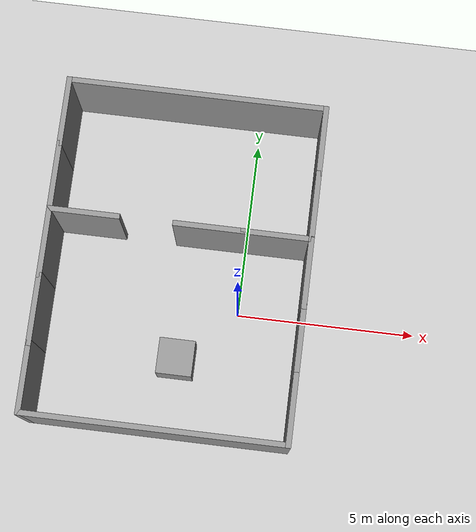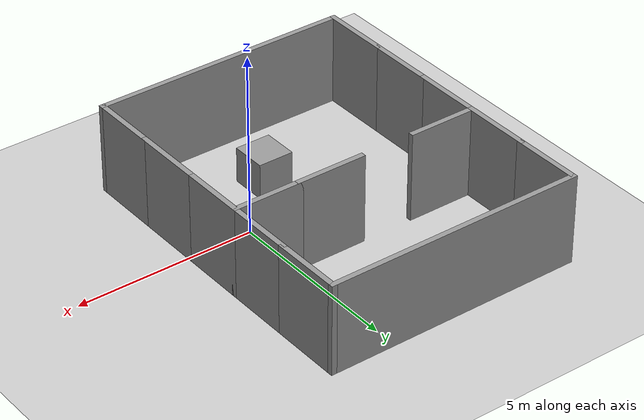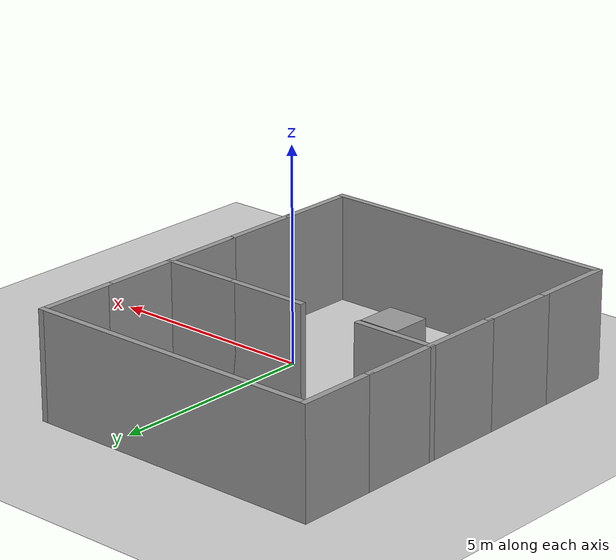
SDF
<sdf version="1.6">
 <world name="default">
  <light name="sun" type="directional">
   <pose>0 0 10 0 -0 0</pose>
   <diffuse>0.8 0.8 0.8 1</diffuse>
   <specular>0.2 0.2 0.2 1</specular>
   <attenuation>
    <range>1000</range>
    <constant>0.9</constant>
    <linear>0.01</linear>
    <quadratic>0.001</quadratic>
   </attenuation>
   <direction>-0.5 0.1 -0.9</direction>
  </light>
  <model name="ground_plane">
   <static>1</static>
   <link name="link">
    <collision name="collision">
     <geometry><plane><normal>0 0 1</normal><size>100 100</size></plane></geometry>
     <surface>
      <contact><collide_bitmask>65535</collide_bitmask></contact>
      <friction><ode><mu>100</mu><mu2>50</mu2></ode></friction>
     </surface>
    </collision>
    <visual name="visual">
     <cast_shadows>0</cast_shadows>
     <geometry><plane><normal>0 0 1</normal><size>100 100</size></plane></geometry>
     <material>
      <script><uri>file://media/materials/scripts/gazebo.material</uri><name>Gazebo/Grey</name></script>
     </material>
    </visual>
   </link>
  </model>
  <gravity>0 0 -9.8</gravity>
  <magnetic_field>6e-06 2.3e-05 -4.2e-05</magnetic_field>
  <atmosphere type="adiabatic"/>
  <physics name="default_physics" default="0" type="ode">
   <max_step_size>0.001</max_step_size>
   <real_time_factor>1</real_time_factor>
   <real_time_update_rate>1000</real_time_update_rate>
  </physics>
  <scene><ambient>0.4 0.4 0.4 1</ambient><background>0.7 0.7 0.7 1</background><shadows>1</shadows></scene>
  <audio><device>default</device></audio>
  <spherical_coordinates>
   <surface_model>EARTH_WGS84</surface_model>
   <latitude_deg>0</latitude_deg>
   <longitude_deg>0</longitude_deg>
   <elevation>0</elevation>
   <heading_deg>0</heading_deg>
  </spherical_coordinates>
  <model name="LVL_One">
   <pose>-1.80169 0.976407 0 0 -0 0</pose>
   <link name="Wall_13">
    <collision name="Wall_13_Collision">
     <geometry><box><size>2 0.15 2.5</size></box></geometry>
     <pose>0 0 1.25 0 -0 0</pose>
    </collision>
    <visual name="Wall_13_Visual">
     <pose>0 0 1.25 0 -0 0</pose>
     <geometry><box><size>2 0.15 2.5</size></box></geometry>
     <material>
      <script><uri>file://media/materials/scripts/gazebo.material</uri><name>Gazebo/Grey</name></script>
      <ambient>1 1 1 1</ambient>
     </material>
     <meta><layer>0</layer></meta>
    </visual>
    <pose>-2.64622 0.925 0 0 -0 3.14159</pose>
   </link>
   <link name="Wall_20">
    <collision name="Wall_20_Collision">
     <geometry><box><size>2 0.15 2.5</size></box></geometry>
     <pose>0 0 1.25 0 -0 0</pose>
    </collision>
    <visual name="Wall_20_Visual">
     <pose>0 0 1.25 0 -0 0</pose>
     <geometry><box><size>2 0.15 2.5</size></box></geometry>
     <material>
      <script><uri>file://media/materials/scripts/gazebo.material</uri><name>Gazebo/Grey</name></script>
      <ambient>1 1 1 1</ambient>
     </material>
     <meta><layer>0</layer></meta>
    </visual>
    <pose>2.64622 0.925 0 0 -0 0</pose>
   </link>
   <link name="Wall_21">
    <collision name="Wall_21_Collision">
     <geometry><box><size>2 0.15 2.5</size></box></geometry>
     <pose>0 0 1.25 0 -0 0</pose>
    </collision>
    <visual name="Wall_21_Visual">
     <pose>0 0 1.25 0 -0 0</pose>
     <geometry><box><size>2 0.15 2.5</size></box></geometry>
     <material>
      <script><uri>file://media/materials/scripts/gazebo.material</uri><name>Gazebo/Grey</name></script>
      <ambient>1 1 1 1</ambient>
     </material>
     <meta><layer>0</layer></meta>
    </visual>
    <pose>3.57122 0 0 0 -0 -1.5708</pose>
   </link>
   <link name="Wall_26">
    <collision name="Wall_26_Collision">
     <geometry><box><size>2 0.15 2.5</size></box></geometry>
     <pose>0 0 1.25 0 -0 0</pose>
    </collision>
    <visual name="Wall_26_Visual">
     <pose>0 0 1.25 0 -0 0</pose>
     <geometry><box><size>2 0.15 2.5</size></box></geometry>
     <material>
      <script><uri>file://media/materials/scripts/gazebo.material</uri><name>Gazebo/Grey</name></script>
      <ambient>1 1 1 1</ambient>
     </material>
     <meta><layer>0</layer></meta>
    </visual>
    <pose>-3.57122 0 0 0 -0 -1.5708</pose>
   </link>
   <link name="Wall_29">
    <collision name="Wall_29_Collision">
     <geometry><box><size>2 0.15 2.5</size></box></geometry>
     <pose>0 0 1.25 0 -0 0</pose>
    </collision>
    <visual name="Wall_29_Visual">
     <pose>0 0 1.25 0 -0 0</pose>
     <geometry><box><size>2 0.15 2.5</size></box></geometry>
     <material>
      <script><uri>file://media/materials/scripts/gazebo.material</uri><name>Gazebo/Grey</name></script>
      <ambient>1 1 1 1</ambient>
     </material>
     <meta><layer>0</layer></meta>
    </visual>
    <pose>-3.57122 1.85 0 0 -0 1.5708</pose>
   </link>
   <link name="Wall_31">
    <collision name="Wall_31_Collision">
     <geometry><box><size>2 0.15 2.5</size></box></geometry>
     <pose>0 0 1.25 0 -0 0</pose>
    </collision>
    <visual name="Wall_31_Visual">
     <pose>0 0 1.25 0 -0 0</pose>
     <geometry><box><size>2 0.15 2.5</size></box></geometry>
     <material>
      <script><uri>file://media/materials/scripts/gazebo.material</uri><name>Gazebo/Grey</name></script>
      <ambient>1 1 1 1</ambient>
     </material>
     <meta><layer>0</layer></meta>
    </visual>
    <pose>3.57122 1.85 0 0 -0 1.5708</pose>
   </link>
   <link name="Wall_34">
    <collision name="Wall_34_Collision">
     <geometry><box><size>2 0.15 2.5</size></box></geometry>
     <pose>0 0 1.25 0 -0 0</pose>
    </collision>
    <visual name="Wall_34_Visual">
     <pose>0 0 1.25 0 -0 0</pose>
     <geometry><box><size>2 0.15 2.5</size></box></geometry>
     <material>
      <script><uri>file://media/materials/scripts/gazebo.material</uri><name>Gazebo/Grey</name></script>
      <ambient>1 1 1 1</ambient>
     </material>
     <meta><layer>0</layer></meta>
    </visual>
    <pose>-3.57122 -1.85 0 0 -0 -1.5708</pose>
   </link>
   <link name="Wall_36">
    <collision name="Wall_36_Collision">
     <geometry><box><size>2 0.15 2.5</size></box></geometry>
     <pose>0 0 1.25 0 -0 0</pose>
    </collision>
    <visual name="Wall_36_Visual">
     <pose>0 0 1.25 0 -0 0</pose>
     <geometry><box><size>2 0.15 2.5</size></box></geometry>
     <material>
      <script><uri>file://media/materials/scripts/gazebo.material</uri><name>Gazebo/Grey</name></script>
      <ambient>1 1 1 1</ambient>
     </material>
     <meta><layer>0</layer></meta>
    </visual>
    <pose>3.57122 -1.85 0 0 -0 -1.5708</pose>
   </link>
   <link name="Wall_39">
    <collision name="Wall_39_Collision">
     <geometry><box><size>2 0.15 2.5</size></box></geometry>
     <pose>0 0 1.25 0 -0 0</pose>
    </collision>
    <visual name="Wall_39_Visual">
     <pose>0 0 1.25 0 -0 0</pose>
     <geometry><box><size>2 0.15 2.5</size></box></geometry>
     <material>
      <script><uri>file://media/materials/scripts/gazebo.material</uri><name>Gazebo/Grey</name></script>
      <ambient>1 1 1 1</ambient>
     </material>
     <meta><layer>0</layer></meta>
    </visual>
    <pose>-3.57122 3.7 0 0 -0 1.5708</pose>
   </link>
   <link name="Wall_41">
    <collision name="Wall_41_Collision">
     <geometry><box><size>2 0.15 2.5</size></box></geometry>
     <pose>0 0 1.25 0 -0 0</pose>
    </collision>
    <visual name="Wall_41_Visual">
     <pose>0 0 1.25 0 -0 0</pose>
     <geometry><box><size>2 0.15 2.5</size></box></geometry>
     <material>
      <script><uri>file://media/materials/scripts/gazebo.material</uri><name>Gazebo/Grey</name></script>
      <ambient>1 1 1 1</ambient>
     </material>
     <meta><layer>0</layer></meta>
    </visual>
    <pose>3.57122 3.7 0 0 -0 1.5708</pose>
   </link>
   <link name="Wall_42">
    <collision name="Wall_42_Collision">
     <geometry><box><size>7.29244 0.15 2.5</size></box></geometry>
     <pose>0 0 1.25 0 -0 0</pose>
    </collision>
    <visual name="Wall_42_Visual">
     <pose>0 0 1.25 0 -0 0</pose>
     <geometry><box><size>7.29244 0.15 2.5</size></box></geometry>
     <material>
      <script><uri>file://media/materials/scripts/gazebo.material</uri><name>Gazebo/Grey</name></script>
      <ambient>1 1 1 1</ambient>
     </material>
     <meta><layer>0</layer></meta>
    </visual>
    <pose>0 4.625 0 0 -0 3.14159</pose>
   </link>
   <link name="Wall_44">
    <collision name="Wall_44_Collision">
     <geometry><box><size>2 0.15 2.5</size></box></geometry>
     <pose>0 0 1.25 0 -0 0</pose>
    </collision>
    <visual name="Wall_44_Visual">
     <pose>0 0 1.25 0 -0 0</pose>
     <geometry><box><size>2 0.15 2.5</size></box></geometry>
     <material>
      <script><uri>file://media/materials/scripts/gazebo.material</uri><name>Gazebo/Grey</name></script>
      <ambient>1 1 1 1</ambient>
     </material>
     <meta><layer>0</layer></meta>
    </visual>
    <pose>-3.57122 -3.7 0 0 -0 -1.5708</pose>
   </link>
   <link name="Wall_46">
    <collision name="Wall_46_Collision">
     <geometry><box><size>2 0.15 2.5</size></box></geometry>
     <pose>0 0 1.25 0 -0 0</pose>
    </collision>
    <visual name="Wall_46_Visual">
     <pose>0 0 1.25 0 -0 0</pose>
     <geometry><box><size>2 0.15 2.5</size></box></geometry>
     <material>
      <script><uri>file://media/materials/scripts/gazebo.material</uri><name>Gazebo/Grey</name></script>
      <ambient>1 1 1 1</ambient>
     </material>
     <meta><layer>0</layer></meta>
    </visual>
    <pose>3.57122 -3.7 0 0 -0 -1.5708</pose>
   </link>
   <link name="Wall_47">
    <collision name="Wall_47_Collision">
     <geometry><box><size>7.29244 0.15 2.5</size></box></geometry>
     <pose>0 0 1.25 0 -0 0</pose>
    </collision>
    <visual name="Wall_47_Visual">
     <pose>0 0 1.25 0 -0 0</pose>
     <geometry><box><size>7.29244 0.15 2.5</size></box></geometry>
     <material>
      <script><uri>file://media/materials/scripts/gazebo.material</uri><name>Gazebo/Grey</name></script>
      <ambient>1 1 1 1</ambient>
     </material>
     <meta><layer>0</layer></meta>
    </visual>
    <pose>0 -4.625 0 0 -0 3.14159</pose>
   </link>
   <link name="Wall_7">
    <collision name="Wall_7_Collision">
     <geometry><box><size>2 0.15 2.5</size></box></geometry>
     <pose>0 0 1.25 0 -0 0</pose>
    </collision>
    <visual name="Wall_7_Visual">
     <pose>0 0 1.25 0 -0 0</pose>
     <geometry><box><size>2 0.15 2.5</size></box></geometry>
     <material>
      <script><uri>file://media/materials/scripts/gazebo.material</uri><name>Gazebo/Grey</name></script>
      <ambient>1 1 1 1</ambient>
     </material>
     <meta><layer>0</layer></meta>
    </visual>
    <pose>0.796219 0.925 0 0 -0 3.14159</pose>
   </link>
   <static>1</static>
  </model>
  <model name="unit_box">
   <pose>-1.5526 -1.51685 0.499995 -1e-05 -0 0</pose>
   <link name="link">
    <inertial>
     <mass>1</mass>
     <inertia>
      <ixx>0.166667</ixx>
      <ixy>0</ixy>
      <ixz>0</ixz>
      <iyy>0.166667</iyy>
      <iyz>0</iyz>
      <izz>0.166667</izz>
     </inertia>
    </inertial>
    <collision name="collision"><geometry><box><size>1 1 1</size></box></geometry></collision>
    <visual name="visual">
     <geometry><box><size>1 1 1</size></box></geometry>
     <material>
      <script><name>Gazebo/Grey</name><uri>file://media/materials/scripts/gazebo.material</uri></script>
     </material>
    </visual>
   </link>
  </model>
 </world>
</sdf>
